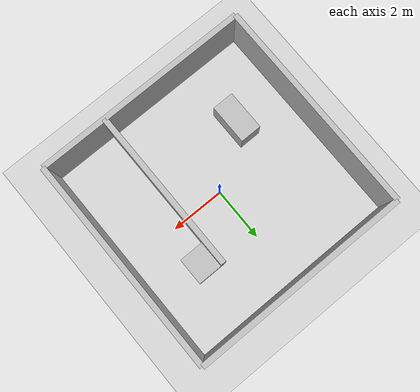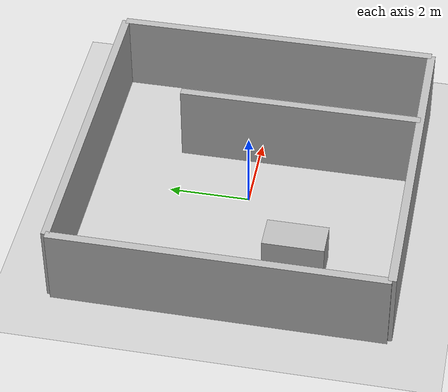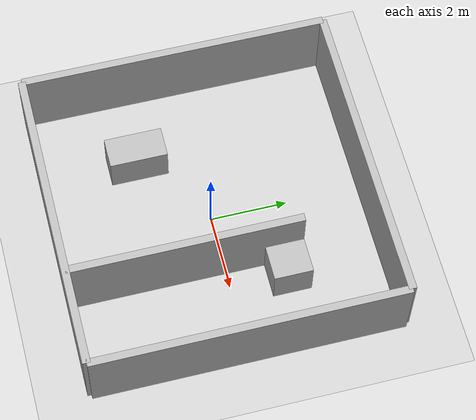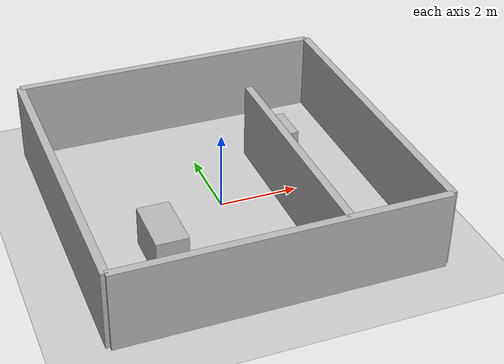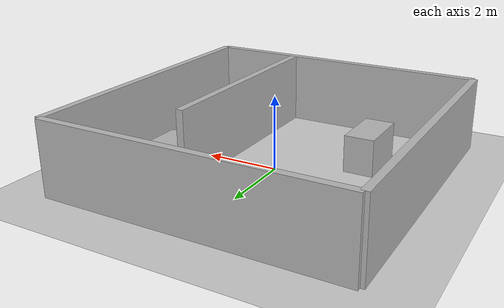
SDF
<?xml version="1.0"?>
<sdf version="1.6">
  <world name="room">
    <include><uri>model://sun</uri></include>
    <include><uri>model://ground_plane</uri></include>

    <model name="walls">
      <static>true</static>
      <link name="link">
        <collision name="n"><pose>0 4 1 0 0 0</pose><geometry><box><size>8 0.2 2</size></box></geometry></collision>
        <visual name="n"><pose>0 4 1 0 0 0</pose><geometry><box><size>8 0.2 2</size></box></geometry></visual>
        <collision name="s"><pose>0 -4 1 0 0 0</pose><geometry><box><size>8 0.2 2</size></box></geometry></collision>
        <visual name="s"><pose>0 -4 1 0 0 0</pose><geometry><box><size>8 0.2 2</size></box></geometry></visual>
        <collision name="e"><pose>4 0 1 0 0 0</pose><geometry><box><size>0.2 8 2</size></box></geometry></collision>
        <visual name="e"><pose>4 0 1 0 0 0</pose><geometry><box><size>0.2 8 2</size></box></geometry></visual>
        <collision name="w"><pose>-4 0 1 0 0 0</pose><geometry><box><size>0.2 8 2</size></box></geometry></collision>
        <visual name="w"><pose>-4 0 1 0 0 0</pose><geometry><box><size>0.2 8 2</size></box></geometry></visual>
      </link>
    </model>

    <model name="box1">
      <static>true</static>
      <pose>2 1.5 0.5 0 0 0</pose>
      <link name="link">
        <collision name="c"><geometry><box><size>1 1 1</size></box></geometry></collision>
        <visual name="v"><geometry><box><size>1 1 1</size></box></geometry></visual>
      </link>
    </model>

    <model name="box2">
      <static>true</static>
      <pose>-2 -1.5 0.5 0 0 0</pose>
      <link name="link">
        <collision name="c"><geometry><box><size>0.8 1.5 1</size></box></geometry></collision>
        <visual name="v"><geometry><box><size>0.8 1.5 1</size></box></geometry></visual>
      </link>
    </model>
    <model name="divider">
      <static>true</static>
      <link name="link">
        <collision name="d1"><pose>1.5 -1 1 0 0 0</pose><geometry><box><size>0.2 6 2</size></box></geometry></collision>
        <visual name="d1"><pose>1.5 -1 1 0 0 0</pose><geometry><box><size>0.2 6 2</size></box></geometry></visual>
      </link>
    </model>
  </world>
</sdf>
